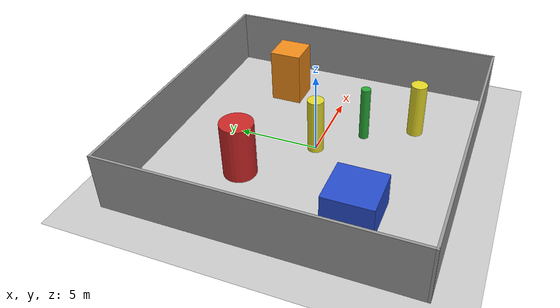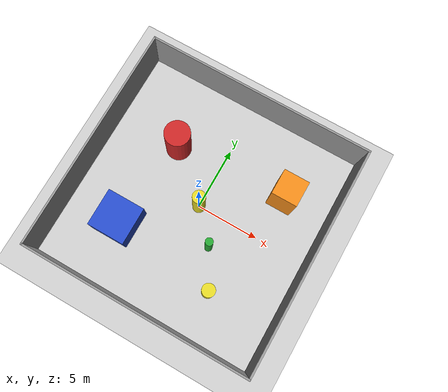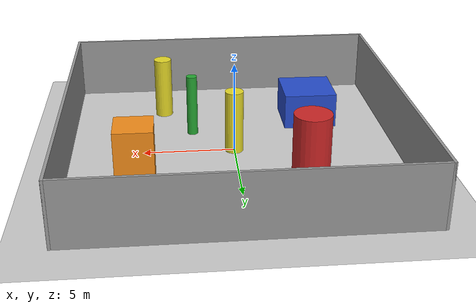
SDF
<?xml version="1.0" ?>
<sdf version="1.5">
  <world name="default">
    <!-- Testing the automatic population of objects -->

    <!-- A global light source -->
    <include>
      <uri>model://sun</uri>
    </include>

      <include>
      <uri>model://ground_plane</uri>
    </include>

   <plugin name="ros_interface_plugin" filename="librotors_gazebo_ros_interface_plugin.so"/>
     <model name='wall'>
      <include>
        <uri>model://Wall_square</uri>
        <pose>0 0 0 0 0 0</pose>
      </include>
    </model>

    <model name='pillar_m_1'>
      <include>
        <uri>model://pillar_m</uri>
        <pose> 0 0 1.75 0 0 0 </pose>
      </include>
    </model>

    <model name='pillar_l'>
      <include>
        <uri>model://pillar_l</uri>
        <pose> -3.7 3.3 1.75 0 0 0 </pose>
      </include>
    </model>

    <model name='pillar_m_2'>
      <include>
        <uri>model://pillar_m</uri>
        <pose>3.8 -5.3 1.75 0 0 0</pose>
      </include>
    </model>

       <model name='pillar_s'>
      <include>
        <uri>model://pillar_s</uri>
        <pose>2.2 -2.4 1.75 0 0 0</pose>
      </include>
    </model>

    <model name='Box_l_1'>
      <include>
        <uri>model://Box_l</uri>
        <pose>5.3 3.8 1.75 0 0 0</pose>
      </include>
    </model>

     <model name='Box_s_1'>
      <include>
        <uri>model://Box_s</uri>
        <pose>-4.7 -4.0 1 0 0 0</pose>
      </include>
    </model>

  </world>
</sdf>

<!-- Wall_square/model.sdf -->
<sdf version='1.6'>
  <model name='Wall_square'>
    <pose frame=''>0 0 0 0 -0 0</pose>
    <link name='Wall_31'>
      <collision name='Wall_31_Collision'>
        <geometry>
          <box>
            <size>18.15 0.15 3.5</size>
          </box>
        </geometry>
        <pose frame=''>0 0 1.75 0 -0 0</pose>
      </collision>
      <visual name='Wall_31_Visual'>
        <pose frame=''>0 0 1.75 0 -0 0</pose>
        <geometry>
          <box>
            <size>18.15 0.15 3.5</size>
          </box>
        </geometry>
        <material>
          <script>
            <uri>file://media/materials/scripts/gazebo.material</uri>
            <name>Gazebo/Grey</name>
          </script>
          <ambient>1 1 1 1</ambient>
        </material>
        <meta>
          <layer>0</layer>
        </meta>
      </visual>
      <pose frame=''>0 9 0 0 -0 0</pose>
    </link>

    <link name='Wall_34'>
      <collision name='Wall_34_Collision'>
        <geometry>
          <box>
            <size>18.15 0.15 3.5</size>
          </box>
        </geometry>
        <pose frame=''>0 0 1.75 0 -0 0</pose>
      </collision>
      <visual name='Wall_34_Visual'>
        <pose frame=''>0 0 1.75 0 -0 0</pose>
        <geometry>
          <box>
            <size>18.15 0.15 3.5</size>
          </box>
        </geometry>
        <material>
          <script>
            <uri>file://media/materials/scripts/gazebo.material</uri>
            <name>Gazebo/Grey</name>
          </script>
          <ambient>1 1 1 1</ambient>
        </material>
        <meta>
          <layer>0</layer>
        </meta>
      </visual>
      <pose frame=''>9 0 0 0 -0 -1.5708</pose>
    </link>

      <link name='Wall_35'>
      <collision name='Wall_35_Collision'>
        <geometry>
          <box>
            <size>18.15 0.15 3.5</size>
          </box>
        </geometry>
        <pose frame=''>0 0 1.75 0 -0 0</pose>
      </collision>
      <visual name='Wall_35_Visual'>
        <pose frame=''>0 0 1.75 0 -0 0</pose>
        <geometry>
          <box>
            <size>18.15 0.15 3.5</size>
          </box>
        </geometry>
        <material>
          <script>
            <uri>file://media/materials/scripts/gazebo.material</uri>
            <name>Gazebo/Grey</name>
          </script>
          <ambient>1 1 1 1</ambient>
        </material>
        <meta>
          <layer>0</layer>
        </meta>
      </visual>
      <pose frame=''>0 -9 0 0 -0 3.14159</pose>
    </link>

    <link name='Wall_36'>
      <collision name='Wall_36_Collision'>
        <geometry>
          <box>
            <size>18.15 0.15 3.5</size>
          </box>
        </geometry>
        <pose frame=''>0 0 1.75 0 -0 0</pose>
      </collision>
      <visual name='Wall_36_Visual'>
        <pose frame=''>0 0 1.75 0 -0 0</pose>
        <geometry>
          <box>
            <size>18.15 0.15 3.5</size>
          </box>
        </geometry>
        <material>
          <script>
            <uri>file://media/materials/scripts/gazebo.material</uri>
            <name>Gazebo/Grey</name>
          </script>
          <ambient>1 1 1 1</ambient>
        </material>
        <meta>
          <layer>0</layer>
        </meta>
      </visual>
      <pose frame=''>-9 0 0 0 -0 1.5708</pose>
    </link>
    <static>1</static>
  </model>
</sdf>

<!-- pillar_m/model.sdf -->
<sdf version='1.6'>
  <model name='pillar_m'>
    <link name='link'>
      <pose frame=''>0 0 0 0 -0 0</pose>
      <gravity>1</gravity>
      <visual name='visual'>
        <geometry>
          <cylinder>
            <radius>0.5</radius>
            <length>3.5</length>
          </cylinder>
        </geometry>
        <material>
          <script>
            <name>Gazebo/Yellow</name>
            <uri>file://media/materials/scripts/gazebo.material</uri>
          </script>
          <ambient>1 1 1 1</ambient>
        </material>
        <pose frame=''>0 0 0 0 -0 0</pose>
      </visual>
      <collision name='collision'>
        <laser_retro>0</laser_retro>
        <max_contacts>10</max_contacts>
        <pose frame=''>0 0 0 0 -0 0</pose>
        <geometry>
          <cylinder>
            <radius>0.5</radius>
            <length>3.5</length>
          </cylinder>
        </geometry>
      </collision>
    </link>
  </model>
</sdf>

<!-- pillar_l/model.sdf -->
<sdf version='1.6'>
  <model name='pillar_l'>
    <link name='link'>
      <pose frame=''>0 0 0 0 -0 0</pose>
      <visual name='visual'>
        <geometry>
          <cylinder>
            <radius>1</radius>
            <length>3.5</length>
          </cylinder>
        </geometry>
        <material>
          <script>
            <name>Gazebo/Red</name>
            <uri>file://media/materials/scripts/gazebo.material</uri>
          </script>
          <ambient>1 1 1 1</ambient>
        </material>
        <pose frame=''>0 0 0 0 -0 0</pose>
      </visual>
      <collision name='collision'>
        <laser_retro>0</laser_retro>
        <max_contacts>10</max_contacts>
        <pose frame=''>0 0 0 0 -0 0</pose>
        <geometry>
          <cylinder>
            <radius>1</radius>
            <length>3.5</length>
          </cylinder>
        </geometry>
      </collision>
    </link>
  </model>
</sdf>

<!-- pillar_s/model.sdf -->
<sdf version='1.6'>
  <model name='pillar_s'>
    <link name='link'>
      <pose frame=''>0 0 0 0 -0 0</pose>
      <gravity>1</gravity>
      <visual name='visual'>
        <geometry>
          <cylinder>
            <radius>0.3</radius>
            <length>3.5</length>
          </cylinder>
        </geometry>
        <material>
          <script>
            <name>Gazebo/Green</name>
            <uri>file://media/materials/scripts/gazebo.material</uri>
          </script>
          <ambient>1 1 1 1</ambient>
        </material>
      </visual>
      <collision name='collision'>

        <pose frame=''>0 0 0 0 -0 0</pose>
        <geometry>
          <cylinder>
            <radius>0.25</radius>
            <length>3.5</length>
          </cylinder>
        </geometry>
      </collision>
    </link>
  </model>
</sdf>

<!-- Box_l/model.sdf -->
<sdf version='1.6'>
  <model name="Box_l">
    <pose frame=''>0 0 0 0 0 0</pose>
    <static>true</static>
    <link name="Box_l_link">
        <inertial>
          <mass>1.0</mass>
        </inertial>
        <collision name="my_collision">
          <geometry>
            <box>
              <size>2 2 3.5</size>
            </box>
          </geometry>
        </collision>
        <visual name="my_visual">
          <geometry>
            <box>
              <size>2 2 3.5</size>
            </box>
          </geometry>
          <material>
            <script>
              <uri>file://media/materials/scripts/gazebo.material</uri>
              <name>Gazebo/Orange</name>
            </script>
            <ambient>1 1 1 1</ambient>
          </material>
        </visual>
    </link>
  </model>
</sdf>

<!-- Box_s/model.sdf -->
<sdf version='1.6'>
  <model name="Box_s">
    <pose frame=''>0 0 0 0 0 0</pose>
    <static>true</static>
    <link name="Box_s_link">
        <inertial>
          <mass>1.0</mass>
        </inertial>
        <collision name="my_collision">
          <geometry>
            <box>
              <size>3 3 2</size>
            </box>
          </geometry>
        </collision>
        <visual name="my_visual">
          <geometry>
            <box>
              <size>3 3 2</size>
            </box>
          </geometry>
          <material>
            <script>
              <uri>file://media/materials/scripts/gazebo.material</uri>
              <name>Gazebo/Blue</name>
            </script>
            <ambient>1 1 1 1</ambient>
          </material>
        </visual>
    </link>
  </model>
</sdf>
